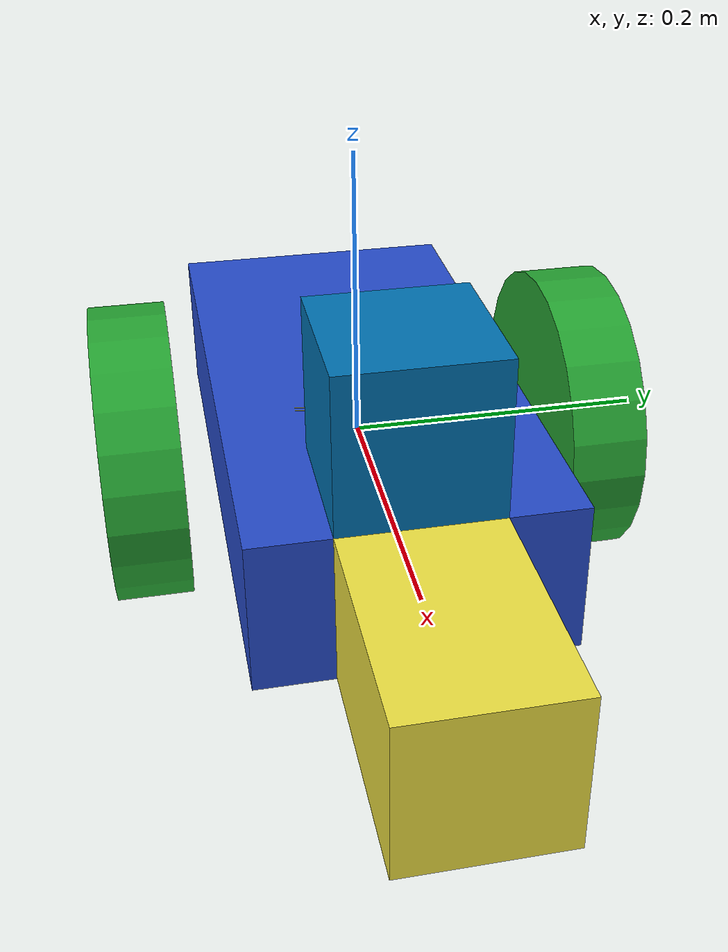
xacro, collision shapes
<?xml version='1.0'?>

<robot name="my_robot" xmlns:xacro="http://www.ros.org/wiki/xacro">

  <xacro:include filename="$(find my_robot)/urdf/my_robot.gazebo" />
  <link name="robot_footprint"></link>

  <joint name="robot_footprint_joint" type="fixed">
    <origin xyz="0 0 0" rpy="0 0 0" />
    <parent link="robot_footprint"/>
    <child link="chassis" />
  </joint>

  <joint type="continuous" name="left_wheel_hinge">
    <origin xyz="0 0.15 0" rpy="0 0 0"/>
    <child link="left_wheel"/>
    <parent link="chassis"/>
    <axis xyz="0 1 0" rpy="0 0 0"/>
    <limit effort="10000" velocity="2000"/>
    <dynamics damping="1.0" friction="1.0"/>
  </joint>

  <joint type="continuous" name="right_wheel_hinge">
    <origin xyz="0 -0.15 0" rpy="0 0 0"/>
    <child link="right_wheel"/>
    <parent link="chassis"/>
    <axis xyz="0 1 0" rpy="0 0 0"/>
    <limit effort="10000" velocity="2000"/>
    <dynamics damping="1.0" friction="1.0"/>
  </joint>

  <joint  type="fixed" name="camera_optical_joint">
   <origin xyz="0.2 0 0" rpy="0 0 0"/>
   <parent link="chassis"/>
   <child link="camera_link_optical"/>
  </joint>

  <joint type="fixed" name="hokuyo_joint">
    <origin xyz="0.15 0 .1" rpy="0 0 0"/>
    <child link="hokuyo"/>
    <parent link="chassis"/>
    <axis xyz="0 1 0" rpy="0 0 0"/>
  </joint>

  <!-- Left Wheel -->
  <link name='left_wheel'>
     <pose>0 0 0.1 0 0 0</pose>
     <inertial>
       <mass value="5.0"/>
       <origin xyz="0.0 0 0" rpy=" 0 1.5707 1.5707"/>
       <inertia
           ixx="0.1" ixy="0" ixz="0"
           iyy="0.1" iyz="0"
           izz="0.1"
       />
     </inertial>

     <collision name='left_wheel_collision'>
       <origin xyz="0.0 0 0" rpy=" 0 1.5707 1.5707"/>
       <geometry>
         <cylinder radius="0.1" length="0.05"/>
       </geometry>
     </collision>

     <visual name='left_wheel_visual'>
       <origin xyz="0.0 0 0" rpy=" 0 1.5707 1.5707"/>
       <geometry>
         <cylinder radius="0.1" length="0.05"/>
       </geometry>
   </visual>
  </link>
  <gazebo reference="left_wheel">
      <material>Gazebo/Green</material>
  </gazebo>

  <!-- Right wheel -->
  <link name='right_wheel'>
     <pose>0 0 0.1 0 0 0</pose>
     <inertial>
       <mass value="5.0"/>
       <origin xyz="0.0 0 0" rpy=" 0 1.5707 1.5707"/>
       <inertia
           ixx="0.1" ixy="0" ixz="0"
           iyy="0.1" iyz="0"
           izz="0.1"
       />
     </inertial>

     <collision name='right_wheel_collision'>
       <origin xyz="0.0 0 0" rpy=" 0 1.5707 1.5707"/>
       <geometry>
         <cylinder radius="0.1" length="0.05"/>
       </geometry>
     </collision>

     <visual name='right_wheel_visual'>
       <origin xyz="0.0 0 0" rpy=" 0 1.5707 1.5707"/>
       <geometry>
         <cylinder radius="0.1" length="0.05"/>
       </geometry>
   </visual>
  </link>
  <gazebo reference="right_wheel">
      <material>Gazebo/Green</material>
  </gazebo>

  <!-- RGB Camera -->

  <!-- RGBD Camera -->
  <link name="camera_link_optical">
    <pose>0 0 0 0 0 0</pose>
    <inertial>
      <mass value="0.1"/>
      <origin xyz="0.1 0.1 0.1" rpy=" 0 0 0"/>
      <inertia
          ixx="1e-6" ixy="0" ixz="0"
          iyy="1e-6" iyz="0"
          izz="1e-6"
      />
    </inertial>

    <collision name='camera_link_optical_collision'>
      <origin xyz="0 0 0" rpy=" 0 0 1.5707"/>
      <geometry>
          <box size=".1 .3 .1"/>
      </geometry>
    </collision>

    <visual name='camera_link_optical_visual'>
      <origin xyz="0 0 0" rpy=" 0 0 1.5707"/>
      <geometry>
        <mesh filename="package://my_robot/meshes/kinect.dae"/>
      </geometry>
    </visual>
  </link>

  <!-- Laser sensor -->
  <link name='hokuyo'>
    <pose>0 0 0 0 0 0</pose>

    <inertial>
      <mass value="1e-5"/>
      <origin xyz="0.05 0.05 0.05" rpy=" 0 0 0"/>
      <inertia
          ixx="1e-6" ixy="0" ixz="0"
          iyy="1e-6" iyz="0"
          izz="1e-6"
      />
    </inertial>

    <collision name='hokuyo_collision'>
      <origin xyz="0 0 0" rpy=" 0 0 0"/>
      <geometry>
        <box size=".1 .1 .1"/>
      </geometry>
    </collision>

    <visual name='hokuyo_visual'>
      <origin xyz="0 0 0" rpy=" 0 0 0"/>
      <geometry>
        <mesh filename="package://my_robot/meshes/hokuyo.dae"/>
      </geometry>
    </visual>

  </link>

  <!-- Chassis -->
  <link name='chassis'>
    <pose>0 0 0.1 0 0 0</pose>

    <inertial>
      <mass value="15.0"/>
      <origin xyz="0.0 0 0" rpy=" 0 0 0"/>
      <inertia
          ixx="0.1" ixy="0" ixz="0"
          iyy="0.1" iyz="0"
          izz="0.1"
      />
    </inertial>

    <collision name='chassis_collision'>
      <origin xyz="0 0 0" rpy=" 0 0 0"/>
      <geometry>
        <box size=".4 .2 .1"/>
      </geometry>
    </collision>

    <visual name='chassis_visual'>
      <origin xyz="0 0 0" rpy=" 0 0 0"/>
      <geometry>
        <box size=".4 .2 .1"/>
      </geometry>
    </visual>

    <collision name='back_caster_collision'>
      <origin xyz="-0.15 0 -0.05" rpy=" 0 0 0"/>
      <geometry>
        <sphere radius="0.0499"/>
      </geometry>
    </collision>

    <visual name='back_caster_visual'>
      <origin xyz="-0.15 0 -0.05" rpy=" 0 0 0"/>
      <geometry>
        <sphere radius="0.05"/>
      </geometry>
    </visual>

    <collision name='front_caster_collision'>
      <origin xyz="0.15 0 -0.05" rpy=" 0 0 0"/>
      <geometry>
        <sphere radius="0.0499"/>
      </geometry>
    </collision>

    <visual name='front_caster_visual'>
      <origin xyz="0.15 0 -0.05" rpy=" 0 0 0"/>
      <geometry>
        <sphere radius="0.05"/>
      </geometry>
    </visual>

  </link>
  <gazebo reference="chassis">
      <material>Gazebo/Blue</material>
  </gazebo>

</robot>
